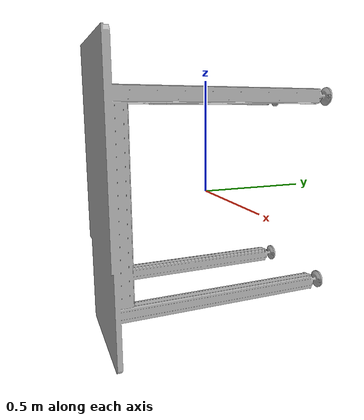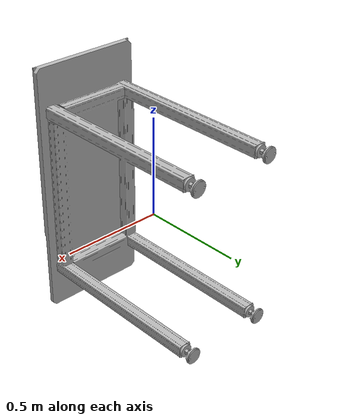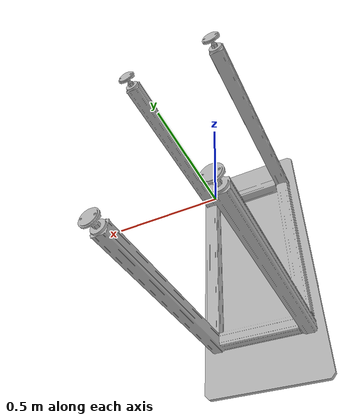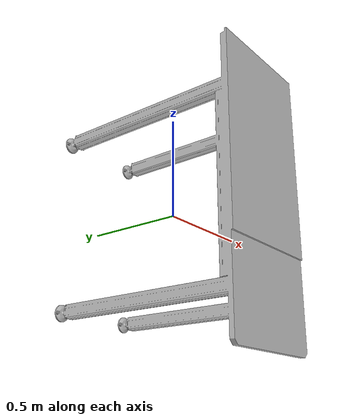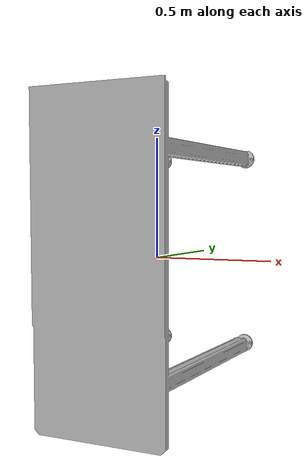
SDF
<?xml version="1.0"?>
<sdf version="1.9">
  <model name="staubli_table">
    <static>true</static>
    <link name="staubli_table_link">
      <visual name="staubli_table_visual">
        <geometry>
          <mesh>
            <uri>model://staubli_table/meshes/staubli_table.stl</uri>
          </mesh>
        </geometry>
      </visual>
      <collision name="staubli_table_collision">
        <geometry>
          <mesh>
            <uri>model://staubli_table/meshes/staubli_table.stl</uri>
          </mesh>
        </geometry>
      </collision>
    </link>
  </model>
</sdf>
